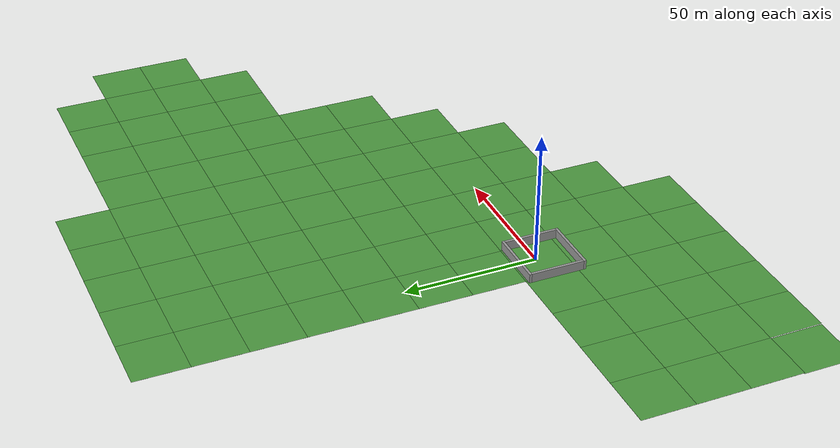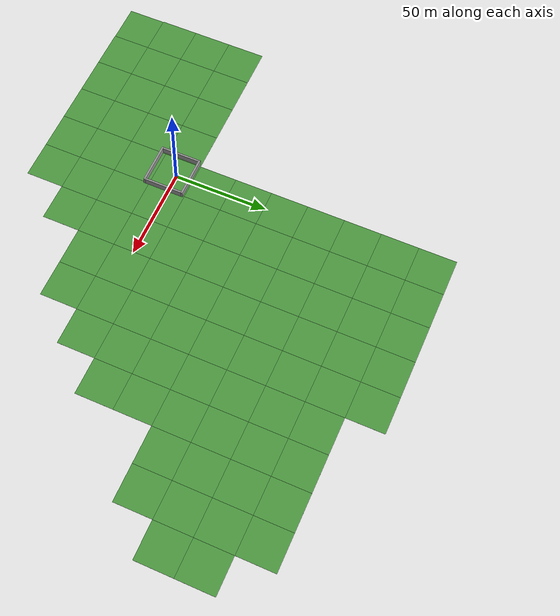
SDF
<sdf version="1.7">
 <world name="default">
  <light name="sun" type="directional">
   <pose>0 0 10 0 -0 0</pose>
   <diffuse>0.8 0.8 0.8 1</diffuse>
   <specular>0.2 0.2 0.2 1</specular>
   <attenuation>
    <range>1000</range>
    <constant>0.9</constant>
    <linear>0.01</linear>
    <quadratic>0.001</quadratic>
   </attenuation>
   <direction>-0.5 0.1 -0.9</direction>
   <spot><inner_angle>0</inner_angle><outer_angle>0</outer_angle><falloff>0</falloff></spot>
  </light>
  <gravity>0 0 -9.8</gravity>
  <magnetic_field>6e-06 2.3e-05 -4.2e-05</magnetic_field>
  <atmosphere type="adiabatic"/>
  <physics type="ode">
   <max_step_size>0.001</max_step_size>
   <real_time_factor>1</real_time_factor>
   <real_time_update_rate>1000</real_time_update_rate>
  </physics>
  <scene><ambient>0.4 0.4 0.4 1</ambient><background>0.7 0.7 0.7 1</background><shadows>1</shadows></scene>
  <spherical_coordinates>
   <surface_model>EARTH_WGS84</surface_model>
   <latitude_deg>0</latitude_deg>
   <longitude_deg>0</longitude_deg>
   <elevation>0</elevation>
   <heading_deg>0</heading_deg>
  </spherical_coordinates>
  <model name="grass_plane">
   <static>1</static>
   <link name="link">
    <collision name="collision">
     <geometry><plane><normal>0 0 1</normal><size>500 500</size></plane></geometry>
     <surface><friction><ode><mu>0.5</mu><mu2>0.5</mu2></ode></friction></surface>
    </collision>
    <visual name="visual_0">
     <pose>-40 -40 0 0 -0 0</pose>
     <cast_shadows>0</cast_shadows>
     <geometry><plane><normal>0 0 1</normal><size>20 20</size></plane></geometry>
     <material>
      <script>
       <uri>model://grass_plane/materials/scripts</uri>
       <uri>model://grass_plane/materials/textures</uri>
       <name>vrc/grass</name>
      </script>
     </material>
    </visual>
    <visual name="visual_1">
     <pose>-20 -40 0 0 -0 0</pose>
     <cast_shadows>0</cast_shadows>
     <geometry><plane><normal>0 0 1</normal><size>20 20</size></plane></geometry>
     <material>
      <script>
       <uri>model://grass_plane/materials/scripts</uri>
       <uri>model://grass_plane/materials/textures</uri>
       <name>vrc/grass</name>
      </script>
     </material>
    </visual>
    <visual name="visual_2">
     <pose>0 -40 0 0 -0 0</pose>
     <cast_shadows>0</cast_shadows>
     <geometry><plane><normal>0 0 1</normal><size>20 20</size></plane></geometry>
     <material>
      <script>
       <uri>model://grass_plane/materials/scripts</uri>
       <uri>model://grass_plane/materials/textures</uri>
       <name>vrc/grass</name>
      </script>
     </material>
    </visual>
    <visual name="visual_3">
     <pose>20 -40 0 0 -0 0</pose>
     <cast_shadows>0</cast_shadows>
     <geometry><plane><normal>0 0 1</normal><size>20 20</size></plane></geometry>
     <material>
      <script>
       <uri>model://grass_plane/materials/scripts</uri>
       <uri>model://grass_plane/materials/textures</uri>
       <name>vrc/grass</name>
      </script>
     </material>
    </visual>
    <visual name="visual_4">
     <pose>40 -40 0 0 -0 0</pose>
     <cast_shadows>0</cast_shadows>
     <geometry><plane><normal>0 0 1</normal><size>20 20</size></plane></geometry>
     <material>
      <script>
       <uri>model://grass_plane/materials/scripts</uri>
       <uri>model://grass_plane/materials/textures</uri>
       <name>vrc/grass</name>
      </script>
     </material>
    </visual>
    <visual name="visual_5">
     <pose>60 -40 0 0 -0 0</pose>
     <cast_shadows>0</cast_shadows>
     <geometry><plane><normal>0 0 1</normal><size>20 20</size></plane></geometry>
     <material>
      <script>
       <uri>model://grass_plane/materials/scripts</uri>
       <uri>model://grass_plane/materials/textures</uri>
       <name>vrc/grass</name>
      </script>
     </material>
    </visual>
    <visual name="visual_6">
     <pose>-40 -20 0 0 -0 0</pose>
     <cast_shadows>0</cast_shadows>
     <geometry><plane><normal>0 0 1</normal><size>20 20</size></plane></geometry>
     <material>
      <script>
       <uri>model://grass_plane/materials/scripts</uri>
       <uri>model://grass_plane/materials/textures</uri>
       <name>vrc/grass</name>
      </script>
     </material>
    </visual>
    <visual name="visual_7">
     <pose>-20 -20 0 0 -0 0</pose>
     <cast_shadows>0</cast_shadows>
     <geometry><plane><normal>0 0 1</normal><size>20 20</size></plane></geometry>
     <material>
      <script>
       <uri>model://grass_plane/materials/scripts</uri>
       <uri>model://grass_plane/materials/textures</uri>
       <name>vrc/grass</name>
      </script>
     </material>
    </visual>
    <visual name="visual_8">
     <pose>0 -20 0 0 -0 0</pose>
     <cast_shadows>0</cast_shadows>
     <geometry><plane><normal>0 0 1</normal><size>20 20</size></plane></geometry>
     <material>
      <script>
       <uri>model://grass_plane/materials/scripts</uri>
       <uri>model://grass_plane/materials/textures</uri>
       <name>vrc/grass</name>
      </script>
     </material>
    </visual>
    <visual name="visual_9">
     <pose>20 -20 0 0 -0 0</pose>
     <cast_shadows>0</cast_shadows>
     <geometry><plane><normal>0 0 1</normal><size>20 20</size></plane></geometry>
     <material>
      <script>
       <uri>model://grass_plane/materials/scripts</uri>
       <uri>model://grass_plane/materials/textures</uri>
       <name>vrc/grass</name>
      </script>
     </material>
    </visual>
    <visual name="visual_10">
     <pose>40 -20 0 0 -0 0</pose>
     <cast_shadows>0</cast_shadows>
     <geometry><plane><normal>0 0 1</normal><size>20 20</size></plane></geometry>
     <material>
      <script>
       <uri>model://grass_plane/materials/scripts</uri>
       <uri>model://grass_plane/materials/textures</uri>
       <name>vrc/grass</name>
      </script>
     </material>
    </visual>
    <visual name="visual_11">
     <pose>60 -20 0 0 -0 0</pose>
     <cast_shadows>0</cast_shadows>
     <geometry><plane><normal>0 0 1</normal><size>20 20</size></plane></geometry>
     <material>
      <script>
       <uri>model://grass_plane/materials/scripts</uri>
       <uri>model://grass_plane/materials/textures</uri>
       <name>vrc/grass</name>
      </script>
     </material>
    </visual>
    <visual name="visual_12">
     <pose>80 -20 0 0 -0 0</pose>
     <cast_shadows>0</cast_shadows>
     <geometry><plane><normal>0 0 1</normal><size>20 20</size></plane></geometry>
     <material>
      <script>
       <uri>model://grass_plane/materials/scripts</uri>
       <uri>model://grass_plane/materials/textures</uri>
       <name>vrc/grass</name>
      </script>
     </material>
    </visual>
    <visual name="visual_13">
     <pose>-40 0 0 0 -0 0</pose>
     <cast_shadows>0</cast_shadows>
     <geometry><plane><normal>0 0 1</normal><size>20 20</size></plane></geometry>
     <material>
      <script>
       <uri>model://grass_plane/materials/scripts</uri>
       <uri>model://grass_plane/materials/textures</uri>
       <name>vrc/grass</name>
      </script>
     </material>
    </visual>
    <visual name="visual_14">
     <pose>-20 0 0 0 -0 0</pose>
     <cast_shadows>0</cast_shadows>
     <geometry><plane><normal>0 0 1</normal><size>20 20</size></plane></geometry>
     <material>
      <script>
       <uri>model://grass_plane/materials/scripts</uri>
       <uri>model://grass_plane/materials/textures</uri>
       <name>vrc/grass</name>
      </script>
     </material>
    </visual>
    <visual name="visual_15">
     <cast_shadows>0</cast_shadows>
     <geometry><plane><normal>0 0 1</normal><size>20 20</size></plane></geometry>
     <material>
      <script>
       <uri>model://grass_plane/materials/scripts</uri>
       <uri>model://grass_plane/materials/textures</uri>
       <name>vrc/grass</name>
      </script>
     </material>
    </visual>
    <visual name="visual_16">
     <pose>20 0 0 0 -0 0</pose>
     <cast_shadows>0</cast_shadows>
     <geometry><plane><normal>0 0 1</normal><size>20 20</size></plane></geometry>
     <material>
      <script>
       <uri>model://grass_plane/materials/scripts</uri>
       <uri>model://grass_plane/materials/textures</uri>
       <name>vrc/grass</name>
      </script>
     </material>
    </visual>
    <visual name="visual_17">
     <pose>40 0 0 0 -0 0</pose>
     <cast_shadows>0</cast_shadows>
     <geometry><plane><normal>0 0 1</normal><size>20 20</size></plane></geometry>
     <material>
      <script>
       <uri>model://grass_plane/materials/scripts</uri>
       <uri>model://grass_plane/materials/textures</uri>
       <name>vrc/grass</name>
      </script>
     </material>
    </visual>
    <visual name="visual_18">
     <pose>60 0 0 0 -0 0</pose>
     <cast_shadows>0</cast_shadows>
     <geometry><plane><normal>0 0 1</normal><size>20 20</size></plane></geometry>
     <material>
      <script>
       <uri>model://grass_plane/materials/scripts</uri>
       <uri>model://grass_plane/materials/textures</uri>
       <name>vrc/grass</name>
      </script>
     </material>
    </visual>
    <visual name="visual_19">
     <pose>80 0 0 0 -0 0</pose>
     <cast_shadows>0</cast_shadows>
     <geometry><plane><normal>0 0 1</normal><size>20 20</size></plane></geometry>
     <material>
      <script>
       <uri>model://grass_plane/materials/scripts</uri>
       <uri>model://grass_plane/materials/textures</uri>
       <name>vrc/grass</name>
      </script>
     </material>
    </visual>
    <visual name="visual_20">
     <pose>100 0 0 0 -0 0</pose>
     <cast_shadows>0</cast_shadows>
     <geometry><plane><normal>0 0 1</normal><size>20 20</size></plane></geometry>
     <material>
      <script>
       <uri>model://grass_plane/materials/scripts</uri>
       <uri>model://grass_plane/materials/textures</uri>
       <name>vrc/grass</name>
      </script>
     </material>
    </visual>
    <visual name="visual_21">
     <pose>120 0 0 0 -0 0</pose>
     <cast_shadows>0</cast_shadows>
     <geometry><plane><normal>0 0 1</normal><size>20 20</size></plane></geometry>
     <material>
      <script>
       <uri>model://grass_plane/materials/scripts</uri>
       <uri>model://grass_plane/materials/textures</uri>
       <name>vrc/grass</name>
      </script>
     </material>
    </visual>
    <visual name="visual_22">
     <pose>-40 20 0 0 -0 0</pose>
     <cast_shadows>0</cast_shadows>
     <geometry><plane><normal>0 0 1</normal><size>20 20</size></plane></geometry>
     <material>
      <script>
       <uri>model://grass_plane/materials/scripts</uri>
       <uri>model://grass_plane/materials/textures</uri>
       <name>vrc/grass</name>
      </script>
     </material>
    </visual>
    <visual name="visual_23">
     <pose>-20 20 0 0 -0 0</pose>
     <cast_shadows>0</cast_shadows>
     <geometry><plane><normal>0 0 1</normal><size>20 20</size></plane></geometry>
     <material>
      <script>
       <uri>model://grass_plane/materials/scripts</uri>
       <uri>model://grass_plane/materials/textures</uri>
       <name>vrc/grass</name>
      </script>
     </material>
    </visual>
    <visual name="visual_24">
     <pose>0 20 0 0 -0 0</pose>
     <cast_shadows>0</cast_shadows>
     <geometry><plane><normal>0 0 1</normal><size>20 20</size></plane></geometry>
     <material>
      <script>
       <uri>model://grass_plane/materials/scripts</uri>
       <uri>model://grass_plane/materials/textures</uri>
       <name>vrc/grass</name>
      </script>
     </material>
    </visual>
    <visual name="visual_25">
     <pose>20 20 0 0 -0 0</pose>
     <cast_shadows>0</cast_shadows>
     <geometry><plane><normal>0 0 1</normal><size>20 20</size></plane></geometry>
     <material>
      <script>
       <uri>model://grass_plane/materials/scripts</uri>
       <uri>model://grass_plane/materials/textures</uri>
       <name>vrc/grass</name>
      </script>
     </material>
    </visual>
    <visual name="visual_26">
     <pose>40 20 0 0 -0 0</pose>
     <cast_shadows>0</cast_shadows>
     <geometry><plane><normal>0 0 1</normal><size>20 20</size></plane></geometry>
     <material>
      <script>
       <uri>model://grass_plane/materials/scripts</uri>
       <uri>model://grass_plane/materials/textures</uri>
       <name>vrc/grass</name>
      </script>
     </material>
    </visual>
    <visual name="visual_27">
     <pose>60 20 0 0 -0 0</pose>
     <cast_shadows>0</cast_shadows>
     <geometry><plane><normal>0 0 1</normal><size>20 20</size></plane></geometry>
     <material>
      <script>
       <uri>model://grass_plane/materials/scripts</uri>
       <uri>model://grass_plane/materials/textures</uri>
       <name>vrc/grass</name>
      </script>
     </material>
    </visual>
    <visual name="visual_28">
     <pose>80 20 0 0 -0 0</pose>
     <cast_shadows>0</cast_shadows>
     <geometry><plane><normal>0 0 1</normal><size>20 20</size></plane></geometry>
     <material>
      <script>
       <uri>model://grass_plane/materials/scripts</uri>
       <uri>model://grass_plane/materials/textures</uri>
       <name>vrc/grass</name>
      </script>
     </material>
    </visual>
    <visual name="visual_29">
     <pose>100 20 0 0 -0 0</pose>
     <cast_shadows>0</cast_shadows>
     <geometry><plane><normal>0 0 1</normal><size>20 20</size></plane></geometry>
     <material>
      <script>
       <uri>model://grass_plane/materials/scripts</uri>
       <uri>model://grass_plane/materials/textures</uri>
       <name>vrc/grass</name>
      </script>
     </material>
    </visual>
    <visual name="visual_30">
     <pose>120 20 0 0 -0 0</pose>
     <cast_shadows>0</cast_shadows>
     <geometry><plane><normal>0 0 1</normal><size>20 20</size></plane></geometry>
     <material>
      <script>
       <uri>model://grass_plane/materials/scripts</uri>
       <uri>model://grass_plane/materials/textures</uri>
       <name>vrc/grass</name>
      </script>
     </material>
    </visual>
    <visual name="visual_31">
     <pose>140 20 0 0 -0 0</pose>
     <cast_shadows>0</cast_shadows>
     <geometry><plane><normal>0 0 1</normal><size>20 20</size></plane></geometry>
     <material>
      <script>
       <uri>model://grass_plane/materials/scripts</uri>
       <uri>model://grass_plane/materials/textures</uri>
       <name>vrc/grass</name>
      </script>
     </material>
    </visual>
    <visual name="visual_32">
     <pose>40 40 0 0 -0 0</pose>
     <cast_shadows>0</cast_shadows>
     <geometry><plane><normal>0 0 1</normal><size>20 20</size></plane></geometry>
     <material>
      <script>
       <uri>model://grass_plane/materials/scripts</uri>
       <uri>model://grass_plane/materials/textures</uri>
       <name>vrc/grass</name>
      </script>
     </material>
    </visual>
    <visual name="visual_33">
     <pose>60 40 0 0 -0 0</pose>
     <cast_shadows>0</cast_shadows>
     <geometry><plane><normal>0 0 1</normal><size>20 20</size></plane></geometry>
     <material>
      <script>
       <uri>model://grass_plane/materials/scripts</uri>
       <uri>model://grass_plane/materials/textures</uri>
       <name>vrc/grass</name>
      </script>
     </material>
    </visual>
    <visual name="visual_34">
     <pose>80 40 0 0 -0 0</pose>
     <cast_shadows>0</cast_shadows>
     <geometry><plane><normal>0 0 1</normal><size>20 20</size></plane></geometry>
     <material>
      <script>
       <uri>model://grass_plane/materials/scripts</uri>
       <uri>model://grass_plane/materials/textures</uri>
       <name>vrc/grass</name>
      </script>
     </material>
    </visual>
    <visual name="visual_35">
     <pose>100 40 0 0 -0 0</pose>
     <cast_shadows>0</cast_shadows>
     <geometry><plane><normal>0 0 1</normal><size>20 20</size></plane></geometry>
     <material>
      <script>
       <uri>model://grass_plane/materials/scripts</uri>
       <uri>model://grass_plane/materials/textures</uri>
       <name>vrc/grass</name>
      </script>
     </material>
    </visual>
    <visual name="visual_36">
     <pose>120 40 0 0 -0 0</pose>
     <cast_shadows>0</cast_shadows>
     <geometry><plane><normal>0 0 1</normal><size>20 20</size></plane></geometry>
     <material>
      <script>
       <uri>model://grass_plane/materials/scripts</uri>
       <uri>model://grass_plane/materials/textures</uri>
       <name>vrc/grass</name>
      </script>
     </material>
    </visual>
    <visual name="visual_37">
     <pose>140 40 0 0 -0 0</pose>
     <cast_shadows>0</cast_shadows>
     <geometry><plane><normal>0 0 1</normal><size>20 20</size></plane></geometry>
     <material>
      <script>
       <uri>model://grass_plane/materials/scripts</uri>
       <uri>model://grass_plane/materials/textures</uri>
       <name>vrc/grass</name>
      </script>
     </material>
    </visual>
    <visual name="visual_38">
     <pose>160 40 0 0 -0 0</pose>
     <cast_shadows>0</cast_shadows>
     <geometry><plane><normal>0 0 1</normal><size>20 20</size></plane></geometry>
     <material>
      <script>
       <uri>model://grass_plane/materials/scripts</uri>
       <uri>model://grass_plane/materials/textures</uri>
       <name>vrc/grass</name>
      </script>
     </material>
    </visual>
    <visual name="visual_39">
     <pose>40 60 0 0 -0 0</pose>
     <cast_shadows>0</cast_shadows>
     <geometry><plane><normal>0 0 1</normal><size>20 20</size></plane></geometry>
     <material>
      <script>
       <uri>model://grass_plane/materials/scripts</uri>
       <uri>model://grass_plane/materials/textures</uri>
       <name>vrc/grass</name>
      </script>
     </material>
    </visual>
    <visual name="visual_40">
     <pose>60 60 0 0 -0 0</pose>
     <cast_shadows>0</cast_shadows>
     <geometry><plane><normal>0 0 1</normal><size>20 20</size></plane></geometry>
     <material>
      <script>
       <uri>model://grass_plane/materials/scripts</uri>
       <uri>model://grass_plane/materials/textures</uri>
       <name>vrc/grass</name>
      </script>
     </material>
    </visual>
    <visual name="visual_41">
     <pose>80 60 0 0 -0 0</pose>
     <cast_shadows>0</cast_shadows>
     <geometry><plane><normal>0 0 1</normal><size>20 20</size></plane></geometry>
     <material>
      <script>
       <uri>model://grass_plane/materials/scripts</uri>
       <uri>model://grass_plane/materials/textures</uri>
       <name>vrc/grass</name>
      </script>
     </material>
    </visual>
    <visual name="visual_42">
     <pose>100 60 0 0 -0 0</pose>
     <cast_shadows>0</cast_shadows>
     <geometry><plane><normal>0 0 1</normal><size>20 20</size></plane></geometry>
     <material>
      <script>
       <uri>model://grass_plane/materials/scripts</uri>
       <uri>model://grass_plane/materials/textures</uri>
       <name>vrc/grass</name>
      </script>
     </material>
    </visual>
    <visual name="visual_43">
     <pose>120 60 0 0 -0 0</pose>
     <cast_shadows>0</cast_shadows>
     <geometry><plane><normal>0 0 1</normal><size>20 20</size></plane></geometry>
     <material>
      <script>
       <uri>model://grass_plane/materials/scripts</uri>
       <uri>model://grass_plane/materials/textures</uri>
       <name>vrc/grass</name>
      </script>
     </material>
    </visual>
    <visual name="visual_44">
     <pose>140 60 0 0 -0 0</pose>
     <cast_shadows>0</cast_shadows>
     <geometry><plane><normal>0 0 1</normal><size>20 20</size></plane></geometry>
     <material>
      <script>
       <uri>model://grass_plane/materials/scripts</uri>
       <uri>model://grass_plane/materials/textures</uri>
       <name>vrc/grass</name>
      </script>
     </material>
    </visual>
    <visual name="visual_45">
     <pose>160 60 0 0 -0 0</pose>
     <cast_shadows>0</cast_shadows>
     <geometry><plane><normal>0 0 1</normal><size>20 20</size></plane></geometry>
     <material>
      <script>
       <uri>model://grass_plane/materials/scripts</uri>
       <uri>model://grass_plane/materials/textures</uri>
       <name>vrc/grass</name>
      </script>
     </material>
    </visual>
    <visual name="visual_46">
     <pose>40 80 0 0 -0 0</pose>
     <cast_shadows>0</cast_shadows>
     <geometry><plane><normal>0 0 1</normal><size>20 20</size></plane></geometry>
     <material>
      <script>
       <uri>model://grass_plane/materials/scripts</uri>
       <uri>model://grass_plane/materials/textures</uri>
       <name>vrc/grass</name>
      </script>
     </material>
    </visual>
    <visual name="visual_47">
     <pose>60 80 0 0 -0 0</pose>
     <cast_shadows>0</cast_shadows>
     <geometry><plane><normal>0 0 1</normal><size>20 20</size></plane></geometry>
     <material>
      <script>
       <uri>model://grass_plane/materials/scripts</uri>
       <uri>model://grass_plane/materials/textures</uri>
       <name>vrc/grass</name>
      </script>
     </material>
    </visual>
    <visual name="visual_48">
     <pose>80 80 0 0 -0 0</pose>
     <cast_shadows>0</cast_shadows>
     <geometry><plane><normal>0 0 1</normal><size>20 20</size></plane></geometry>
     <material>
      <script>
       <uri>model://grass_plane/materials/scripts</uri>
       <uri>model://grass_plane/materials/textures</uri>
       <name>vrc/grass</name>
      </script>
     </material>
    </visual>
    <visual name="visual_49">
     <pose>100 80 0 0 -0 0</pose>
     <cast_shadows>0</cast_shadows>
     <geometry><plane><normal>0 0 1</normal><size>20 20</size></plane></geometry>
     <material>
      <script>
       <uri>model://grass_plane/materials/scripts</uri>
       <uri>model://grass_plane/materials/textures</uri>
       <name>vrc/grass</name>
      </script>
     </material>
    </visual>
    <visual name="visual_50">
     <pose>120 80 0 0 -0 0</pose>
     <cast_shadows>0</cast_shadows>
     <geometry><plane><normal>0 0 1</normal><size>20 20</size></plane></geometry>
     <material>
      <script>
       <uri>model://grass_plane/materials/scripts</uri>
       <uri>model://grass_plane/materials/textures</uri>
       <name>vrc/grass</name>
      </script>
     </material>
    </visual>
    <visual name="visual_51">
     <pose>140 80 0 0 -0 0</pose>
     <cast_shadows>0</cast_shadows>
     <geometry><plane><normal>0 0 1</normal><size>20 20</size></plane></geometry>
     <material>
      <script>
       <uri>model://grass_plane/materials/scripts</uri>
       <uri>model://grass_plane/materials/textures</uri>
       <name>vrc/grass</name>
      </script>
     </material>
    </visual>
    <visual name="visual_52">
     <pose>160 80 0 0 -0 0</pose>
     <cast_shadows>0</cast_shadows>
     <geometry><plane><normal>0 0 1</normal><size>20 20</size></plane></geometry>
     <material>
      <script>
       <uri>model://grass_plane/materials/scripts</uri>
       <uri>model://grass_plane/materials/textures</uri>
       <name>vrc/grass</name>
      </script>
     </material>
    </visual>
    <visual name="visual_53">
     <pose>180 80 0 0 -0 0</pose>
     <cast_shadows>0</cast_shadows>
     <geometry><plane><normal>0 0 1</normal><size>20 20</size></plane></geometry>
     <material>
      <script>
       <uri>model://grass_plane/materials/scripts</uri>
       <uri>model://grass_plane/materials/textures</uri>
       <name>vrc/grass</name>
      </script>
     </material>
    </visual>
    <visual name="visual_54">
     <pose>200 80 0 0 -0 0</pose>
     <cast_shadows>0</cast_shadows>
     <geometry><plane><normal>0 0 1</normal><size>20 20</size></plane></geometry>
     <material>
      <script>
       <uri>model://grass_plane/materials/scripts</uri>
       <uri>model://grass_plane/materials/textures</uri>
       <name>vrc/grass</name>
      </script>
     </material>
    </visual>
    <visual name="visual_55">
     <pose>40 100 0 0 -0 0</pose>
     <cast_shadows>0</cast_shadows>
     <geometry><plane><normal>0 0 1</normal><size>20 20</size></plane></geometry>
     <material>
      <script>
       <uri>model://grass_plane/materials/scripts</uri>
       <uri>model://grass_plane/materials/textures</uri>
       <name>vrc/grass</name>
      </script>
     </material>
    </visual>
    <visual name="visual_56">
     <pose>60 100 0 0 -0 0</pose>
     <cast_shadows>0</cast_shadows>
     <geometry><plane><normal>0 0 1</normal><size>20 20</size></plane></geometry>
     <material>
      <script>
       <uri>model://grass_plane/materials/scripts</uri>
       <uri>model://grass_plane/materials/textures</uri>
       <name>vrc/grass</name>
      </script>
     </material>
    </visual>
    <visual name="visual_57">
     <pose>80 100 0 0 -0 0</pose>
     <cast_shadows>0</cast_shadows>
     <geometry><plane><normal>0 0 1</normal><size>20 20</size></plane></geometry>
     <material>
      <script>
       <uri>model://grass_plane/materials/scripts</uri>
       <uri>model://grass_plane/materials/textures</uri>
       <name>vrc/grass</name>
      </script>
     </material>
    </visual>
    <visual name="visual_58">
     <pose>100 100 0 0 -0 0</pose>
     <cast_shadows>0</cast_shadows>
     <geometry><plane><normal>0 0 1</normal><size>20 20</size></plane></geometry>
     <material>
      <script>
       <uri>model://grass_plane/materials/scripts</uri>
       <uri>model://grass_plane/materials/textures</uri>
       <name>vrc/grass</name>
      </script>
     </material>
    </visual>
    <visual name="visual_59">
     <pose>120 100 0 0 -0 0</pose>
     <cast_shadows>0</cast_shadows>
     <geometry><plane><normal>0 0 1</normal><size>20 20</size></plane></geometry>
     <material>
      <script>
       <uri>model://grass_plane/materials/scripts</uri>
       <uri>model://grass_plane/materials/textures</uri>
       <name>vrc/grass</name>
      </script>
     </material>
    </visual>
    <visual name="visual_60">
     <pose>140 100 0 0 -0 0</pose>
     <cast_shadows>0</cast_shadows>
     <geometry><plane><normal>0 0 1</normal><size>20 20</size></plane></geometry>
     <material>
      <script>
       <uri>model://grass_plane/materials/scripts</uri>
       <uri>model://grass_plane/materials/textures</uri>
       <name>vrc/grass</name>
      </script>
     </material>
    </visual>
    <visual name="visual_61">
     <pose>160 100 0 0 -0 0</pose>
     <cast_shadows>0</cast_shadows>
     <geometry><plane><normal>0 0 1</normal><size>20 20</size></plane></geometry>
     <material>
      <script>
       <uri>model://grass_plane/materials/scripts</uri>
       <uri>model://grass_plane/materials/textures</uri>
       <name>vrc/grass</name>
      </script>
     </material>
    </visual>
    <visual name="visual_62">
     <pose>180 100 0 0 -0 0</pose>
     <cast_shadows>0</cast_shadows>
     <geometry><plane><normal>0 0 1</normal><size>20 20</size></plane></geometry>
     <material>
      <script>
       <uri>model://grass_plane/materials/scripts</uri>
       <uri>model://grass_plane/materials/textures</uri>
       <name>vrc/grass</name>
      </script>
     </material>
    </visual>
    <visual name="visual_63">
     <pose>200 100 0 0 -0 0</pose>
     <cast_shadows>0</cast_shadows>
     <geometry><plane><normal>0 0 1</normal><size>20 20</size></plane></geometry>
     <material>
      <script>
       <uri>model://grass_plane/materials/scripts</uri>
       <uri>model://grass_plane/materials/textures</uri>
       <name>vrc/grass</name>
      </script>
     </material>
    </visual>
    <visual name="visual_63a">
     <pose>220 100 0 0 -0 0</pose>
     <cast_shadows>0</cast_shadows>
     <geometry><plane><normal>0 0 1</normal><size>20 20</size></plane></geometry>
     <material>
      <script>
       <uri>model://grass_plane/materials/scripts</uri>
       <uri>model://grass_plane/materials/textures</uri>
       <name>vrc/grass</name>
      </script>
     </material>
    </visual>
    <visual name="visual_64">
     <pose>40 120 0 0 -0 0</pose>
     <cast_shadows>0</cast_shadows>
     <geometry><plane><normal>0 0 1</normal><size>20 20</size></plane></geometry>
     <material>
      <script>
       <uri>model://grass_plane/materials/scripts</uri>
       <uri>model://grass_plane/materials/textures</uri>
       <name>vrc/grass</name>
      </script>
     </material>
    </visual>
    <visual name="visual_65">
     <pose>60 120 0 0 -0 0</pose>
     <cast_shadows>0</cast_shadows>
     <geometry><plane><normal>0 0 1</normal><size>20 20</size></plane></geometry>
     <material>
      <script>
       <uri>model://grass_plane/materials/scripts</uri>
       <uri>model://grass_plane/materials/textures</uri>
       <name>vrc/grass</name>
      </script>
     </material>
    </visual>
    <visual name="visual_66">
     <pose>80 120 0 0 -0 0</pose>
     <cast_shadows>0</cast_shadows>
     <geometry><plane><normal>0 0 1</normal><size>20 20</size></plane></geometry>
     <material>
      <script>
       <uri>model://grass_plane/materials/scripts</uri>
       <uri>model://grass_plane/materials/textures</uri>
       <name>vrc/grass</name>
      </script>
     </material>
    </visual>
    <visual name="visual_67">
     <pose>100 120 0 0 -0 0</pose>
     <cast_shadows>0</cast_shadows>
     <geometry><plane><normal>0 0 1</normal><size>20 20</size></plane></geometry>
     <material>
      <script>
       <uri>model://grass_plane/materials/scripts</uri>
       <uri>model://grass_plane/materials/textures</uri>
       <name>vrc/grass</name>
      </script>
     </material>
    </visual>
    <visual name="visual_68">
     <pose>120 120 0 0 -0 0</pose>
     <cast_shadows>0</cast_shadows>
     <geometry><plane><normal>0 0 1</normal><size>20 20</size></plane></geometry>
     <material>
      <script>
       <uri>model://grass_plane/materials/scripts</uri>
       <uri>model://grass_plane/materials/textures</uri>
       <name>vrc/grass</name>
      </script>
     </material>
    </visual>
    <visual name="visual_69">
     <pose>140 120 0 0 -0 0</pose>
     <cast_shadows>0</cast_shadows>
     <geometry><plane><normal>0 0 1</normal><size>20 20</size></plane></geometry>
     <material>
      <script>
       <uri>model://grass_plane/materials/scripts</uri>
       <uri>model://grass_plane/materials/textures</uri>
       <name>vrc/grass</name>
      </script>
     </material>
    </visual>
    <visual name="visual_70">
     <pose>160 120 0 0 -0 0</pose>
     <cast_shadows>0</cast_shadows>
     <geometry><plane><normal>0 0 1</normal><size>20 20</size></plane></geometry>
     <material>
      <script>
       <uri>model://grass_plane/materials/scripts</uri>
       <uri>model://grass_plane/materials/textures</uri>
       <name>vrc/grass</name>
      </script>
     </material>
    </visual>
    <visual name="visual_71">
     <pose>180 120 0 0 -0 0</pose>
     <cast_shadows>0</cast_shadows>
     <geometry><plane><normal>0 0 1</normal><size>20 20</size></plane></geometry>
     <material>
      <script>
       <uri>model://grass_plane/materials/scripts</uri>
       <uri>model://grass_plane/materials/textures</uri>
       <name>vrc/grass</name>
      </script>
     </material>
    </visual>
    <visual name="visual_72">
     <pose>200 120 0 0 -0 0</pose>
     <cast_shadows>0</cast_shadows>
     <geometry><plane><normal>0 0 1</normal><size>20 20</size></plane></geometry>
     <material>
      <script>
       <uri>model://grass_plane/materials/scripts</uri>
       <uri>model://grass_plane/materials/textures</uri>
       <name>vrc/grass</name>
      </script>
     </material>
    </visual>
    <visual name="visual_72a">
     <pose>220 120 0 0 -0 0</pose>
     <cast_shadows>0</cast_shadows>
     <geometry><plane><normal>0 0 1</normal><size>20 20</size></plane></geometry>
     <material>
      <script>
       <uri>model://grass_plane/materials/scripts</uri>
       <uri>model://grass_plane/materials/textures</uri>
       <name>vrc/grass</name>
      </script>
     </material>
    </visual>
    <visual name="visual_73">
     <pose>40 140 0 0 -0 0</pose>
     <cast_shadows>0</cast_shadows>
     <geometry><plane><normal>0 0 1</normal><size>20 20</size></plane></geometry>
     <material>
      <script>
       <uri>model://grass_plane/materials/scripts</uri>
       <uri>model://grass_plane/materials/textures</uri>
       <name>vrc/grass</name>
      </script>
     </material>
    </visual>
    <visual name="visual_74">
     <pose>60 140 0 0 -0 0</pose>
     <cast_shadows>0</cast_shadows>
     <geometry><plane><normal>0 0 1</normal><size>20 20</size></plane></geometry>
     <material>
      <script>
       <uri>model://grass_plane/materials/scripts</uri>
       <uri>model://grass_plane/materials/textures</uri>
       <name>vrc/grass</name>
      </script>
     </material>
    </visual>
    <visual name="visual_75">
     <pose>80 140 0 0 -0 0</pose>
     <cast_shadows>0</cast_shadows>
     <geometry><plane><normal>0 0 1</normal><size>20 20</size></plane></geometry>
     <material>
      <script>
       <uri>model://grass_plane/materials/scripts</uri>
       <uri>model://grass_plane/materials/textures</uri>
       <name>vrc/grass</name>
      </script>
     </material>
    </visual>
    <visual name="visual_76">
     <pose>100 140 0 0 -0 0</pose>
     <cast_shadows>0</cast_shadows>
     <geometry><plane><normal>0 0 1</normal><size>20 20</size></plane></geometry>
     <material>
      <script>
       <uri>model://grass_plane/materials/scripts</uri>
       <uri>model://grass_plane/materials/textures</uri>
       <name>vrc/grass</name>
      </script>
     </material>
    </visual>
    <visual name="visual_77">
     <pose>120 140 0 0 -0 0</pose>
     <cast_shadows>0</cast_shadows>
     <geometry><plane><normal>0 0 1</normal><size>20 20</size></plane></geometry>
     <material>
      <script>
       <uri>model://grass_plane/materials/scripts</uri>
       <uri>model://grass_plane/materials/textures</uri>
       <name>vrc/grass</name>
      </script>
     </material>
    </visual>
    <visual name="visual_78">
     <pose>140 140 0 0 -0 0</pose>
     <cast_shadows>0</cast_shadows>
     <geometry><plane><normal>0 0 1</normal><size>20 20</size></plane></geometry>
     <material>
      <script>
       <uri>model://grass_plane/materials/scripts</uri>
       <uri>model://grass_plane/materials/textures</uri>
       <name>vrc/grass</name>
      </script>
     </material>
    </visual>
    <visual name="visual_79">
     <pose>160 140 0 0 -0 0</pose>
     <cast_shadows>0</cast_shadows>
     <geometry><plane><normal>0 0 1</normal><size>20 20</size></plane></geometry>
     <material>
      <script>
       <uri>model://grass_plane/materials/scripts</uri>
       <uri>model://grass_plane/materials/textures</uri>
       <name>vrc/grass</name>
      </script>
     </material>
    </visual>
    <visual name="visual_80">
     <pose>180 140 0 0 -0 0</pose>
     <cast_shadows>0</cast_shadows>
     <geometry><plane><normal>0 0 1</normal><size>20 20</size></plane></geometry>
     <material>
      <script>
       <uri>model://grass_plane/materials/scripts</uri>
       <uri>model://grass_plane/materials/textures</uri>
       <name>vrc/grass</name>
      </script>
     </material>
    </visual>
    <visual name="visual_81">
     <pose>200 140 0 0 -0 0</pose>
     <cast_shadows>0</cast_shadows>
     <geometry><plane><normal>0 0 1</normal><size>20 20</size></plane></geometry>
     <material>
      <script>
       <uri>model://grass_plane/materials/scripts</uri>
       <uri>model://grass_plane/materials/textures</uri>
       <name>vrc/grass</name>
      </script>
     </material>
    </visual>
    <visual name="visual_82">
     <pose>40 160 0 0 -0 0</pose>
     <cast_shadows>0</cast_shadows>
     <geometry><plane><normal>0 0 1</normal><size>20 20</size></plane></geometry>
     <material>
      <script>
       <uri>model://grass_plane/materials/scripts</uri>
       <uri>model://grass_plane/materials/textures</uri>
       <name>vrc/grass</name>
      </script>
     </material>
    </visual>
    <visual name="visual_83">
     <pose>60 160 0 0 -0 0</pose>
     <cast_shadows>0</cast_shadows>
     <geometry><plane><normal>0 0 1</normal><size>20 20</size></plane></geometry>
     <material>
      <script>
       <uri>model://grass_plane/materials/scripts</uri>
       <uri>model://grass_plane/materials/textures</uri>
       <name>vrc/grass</name>
      </script>
     </material>
    </visual>
    <visual name="visual_84">
     <pose>80 160 0 0 -0 0</pose>
     <cast_shadows>0</cast_shadows>
     <geometry><plane><normal>0 0 1</normal><size>20 20</size></plane></geometry>
     <material>
      <script>
       <uri>model://grass_plane/materials/scripts</uri>
       <uri>model://grass_plane/materials/textures</uri>
       <name>vrc/grass</name>
      </script>
     </material>
    </visual>
    <visual name="visual_85">
     <pose>100 160 0 0 -0 0</pose>
     <cast_shadows>0</cast_shadows>
     <geometry><plane><normal>0 0 1</normal><size>20 20</size></plane></geometry>
     <material>
      <script>
       <uri>model://grass_plane/materials/scripts</uri>
       <uri>model://grass_plane/materials/textures</uri>
       <name>vrc/grass</name>
      </script>
     </material>
    </visual>
    <visual name="visual_86">
     <pose>120 160 0 0 -0 0</pose>
     <cast_shadows>0</cast_shadows>
     <geometry><plane><normal>0 0 1</normal><size>20 20</size></plane></geometry>
     <material>
      <script>
       <uri>model://grass_plane/materials/scripts</uri>
       <uri>model://grass_plane/materials/textures</uri>
       <name>vrc/grass</name>
      </script>
     </material>
    </visual>
   </link>
   <pose>-40.3602 -20.9776 0 0 -0 0</pose>
  </model>
  <model name="occupancy_grid2">
   <link name="Wall_1">
    <velocity_decay><linear>0</linear><angular>0</angular></velocity_decay>
    <pose>-10.5 0 0 0 0 -1.5708</pose>
    <visual name="Wall_1_Visual">
     <pose>0 0 1.75 0 -0 0</pose>
     <geometry><box><size>20 1 3.5</size></box></geometry>
     <material>
      <script><uri>file://media/materials/scripts/gazebo.material</uri><name>Gazebo/Grey</name></script>
      <shader type="pixel"/>
     </material>
    </visual>
    <collision name="Wall_1_Collision">
     <pose>0 0 1.75 0 -0 0</pose>
     <geometry><box><size>20 1 3.5</size></box></geometry>
     <surface>
      <friction>
       <ode><mu>1</mu><mu2>1</mu2><fdir1>0 0 0</fdir1><slip1>0</slip1><slip2>0</slip2></ode>
       <torsional>
        <coefficient>1</coefficient>
        <patch_radius>0</patch_radius>
        <surface_radius>0</surface_radius>
        <use_patch_radius>1</use_patch_radius>
        <ode><slip>0</slip></ode>
       </torsional>
      </friction>
      <bounce><restitution_coefficient>0</restitution_coefficient><threshold>1e+06</threshold></bounce>
      <contact>
       <collide_without_contact>0</collide_without_contact>
       <collide_without_contact_bitmask>1</collide_without_contact_bitmask>
       <collide_bitmask>1</collide_bitmask>
       <ode>
        <soft_cfm>0</soft_cfm>
        <soft_erp>0.2</soft_erp>
        <kp>1e+13</kp>
        <kd>1</kd>
        <max_vel>0.01</max_vel>
        <min_depth>0</min_depth>
       </ode>
       <bullet>
        <split_impulse>1</split_impulse>
        <split_impulse_penetration_threshold>-0.01</split_impulse_penetration_threshold>
        <soft_cfm>0</soft_cfm>
        <soft_erp>0.2</soft_erp>
        <kp>1e+13</kp>
        <kd>1</kd>
       </bullet>
      </contact>
     </surface>
    </collision>
   </link>
   <link name="Wall_2">
    <velocity_decay><linear>0</linear><angular>0</angular></velocity_decay>
    <pose>0 -10.5 0 0 -0 0</pose>
    <visual name="Wall_2_Visual">
     <pose>0 0 1.75 0 -0 0</pose>
     <geometry><box><size>22 1 3.5</size></box></geometry>
     <material>
      <script><uri>file://media/materials/scripts/gazebo.material</uri><name>Gazebo/Grey</name></script>
      <shader type="pixel"/>
     </material>
    </visual>
    <collision name="Wall_2_Collision">
     <pose>0 0 1.75 0 -0 0</pose>
     <geometry><box><size>22 1 3.5</size></box></geometry>
     <surface>
      <friction>
       <ode><mu>1</mu><mu2>1</mu2><fdir1>0 0 0</fdir1><slip1>0</slip1><slip2>0</slip2></ode>
       <torsional>
        <coefficient>1</coefficient>
        <patch_radius>0</patch_radius>
        <surface_radius>0</surface_radius>
        <use_patch_radius>1</use_patch_radius>
        <ode><slip>0</slip></ode>
       </torsional>
      </friction>
      <bounce><restitution_coefficient>0</restitution_coefficient><threshold>1e+06</threshold></bounce>
      <contact>
       <collide_without_contact>0</collide_without_contact>
       <collide_without_contact_bitmask>1</collide_without_contact_bitmask>
       <collide_bitmask>1</collide_bitmask>
       <ode>
        <soft_cfm>0</soft_cfm>
        <soft_erp>0.2</soft_erp>
        <kp>1e+13</kp>
        <kd>1</kd>
        <max_vel>0.01</max_vel>
        <min_depth>0</min_depth>
       </ode>
       <bullet>
        <split_impulse>1</split_impulse>
        <split_impulse_penetration_threshold>-0.01</split_impulse_penetration_threshold>
        <soft_cfm>0</soft_cfm>
        <soft_erp>0.2</soft_erp>
        <kp>1e+13</kp>
        <kd>1</kd>
       </bullet>
      </contact>
     </surface>
    </collision>
   </link>
   <link name="Wall_3">
    <velocity_decay><linear>0</linear><angular>0</angular></velocity_decay>
    <pose>10.5 0 0 0 -0 1.5708</pose>
    <visual name="Wall_3_Visual">
     <pose>0 0 1.75 0 -0 0</pose>
     <geometry><box><size>20 1 3.5</size></box></geometry>
     <material>
      <script><uri>file://media/materials/scripts/gazebo.material</uri><name>Gazebo/Grey</name></script>
      <shader type="pixel"/>
     </material>
    </visual>
    <collision name="Wall_3_Collision">
     <pose>0 0 1.75 0 -0 0</pose>
     <geometry><box><size>20 1 3.5</size></box></geometry>
     <surface>
      <friction>
       <ode><mu>1</mu><mu2>1</mu2><fdir1>0 0 0</fdir1><slip1>0</slip1><slip2>0</slip2></ode>
       <torsional>
        <coefficient>1</coefficient>
        <patch_radius>0</patch_radius>
        <surface_radius>0</surface_radius>
        <use_patch_radius>1</use_patch_radius>
        <ode><slip>0</slip></ode>
       </torsional>
      </friction>
      <bounce><restitution_coefficient>0</restitution_coefficient><threshold>1e+06</threshold></bounce>
      <contact>
       <collide_without_contact>0</collide_without_contact>
       <collide_without_contact_bitmask>1</collide_without_contact_bitmask>
       <collide_bitmask>1</collide_bitmask>
       <ode>
        <soft_cfm>0</soft_cfm>
        <soft_erp>0.2</soft_erp>
        <kp>1e+13</kp>
        <kd>1</kd>
        <max_vel>0.01</max_vel>
        <min_depth>0</min_depth>
       </ode>
       <bullet>
        <split_impulse>1</split_impulse>
        <split_impulse_penetration_threshold>-0.01</split_impulse_penetration_threshold>
        <soft_cfm>0</soft_cfm>
        <soft_erp>0.2</soft_erp>
        <kp>1e+13</kp>
        <kd>1</kd>
       </bullet>
      </contact>
     </surface>
    </collision>
   </link>
   <link name="Wall_4">
    <velocity_decay><linear>0</linear><angular>0</angular></velocity_decay>
    <pose>0 10.5 0 0 -0 0</pose>
    <visual name="Wall_4_Visual">
     <pose>0 0 1.75 0 -0 0</pose>
     <geometry><box><size>22 1 3.5</size></box></geometry>
     <material>
      <script><uri>file://media/materials/scripts/gazebo.material</uri><name>Gazebo/Grey</name></script>
      <shader type="pixel"/>
     </material>
    </visual>
    <collision name="Wall_4_Collision">
     <pose>0 0 1.75 0 -0 0</pose>
     <geometry><box><size>22 1 3.5</size></box></geometry>
     <surface>
      <friction>
       <ode><mu>1</mu><mu2>1</mu2><fdir1>0 0 0</fdir1><slip1>0</slip1><slip2>0</slip2></ode>
       <torsional>
        <coefficient>1</coefficient>
        <patch_radius>0</patch_radius>
        <surface_radius>0</surface_radius>
        <use_patch_radius>1</use_patch_radius>
        <ode><slip>0</slip></ode>
       </torsional>
      </friction>
      <bounce><restitution_coefficient>0</restitution_coefficient><threshold>1e+06</threshold></bounce>
      <contact>
       <collide_without_contact>0</collide_without_contact>
       <collide_without_contact_bitmask>1</collide_without_contact_bitmask>
       <collide_bitmask>1</collide_bitmask>
       <ode>
        <soft_cfm>0</soft_cfm>
        <soft_erp>0.2</soft_erp>
        <kp>1e+13</kp>
        <kd>1</kd>
        <max_vel>0.01</max_vel>
        <min_depth>0</min_depth>
       </ode>
       <bullet>
        <split_impulse>1</split_impulse>
        <split_impulse_penetration_threshold>-0.01</split_impulse_penetration_threshold>
        <soft_cfm>0</soft_cfm>
        <soft_erp>0.2</soft_erp>
        <kp>1e+13</kp>
        <kd>1</kd>
       </bullet>
      </contact>
     </surface>
    </collision>
   </link>
   <static>1</static>
   <pose>-0.656068 -2.60344 0 0 -0 0</pose>
  </model>
 </world>
</sdf>
